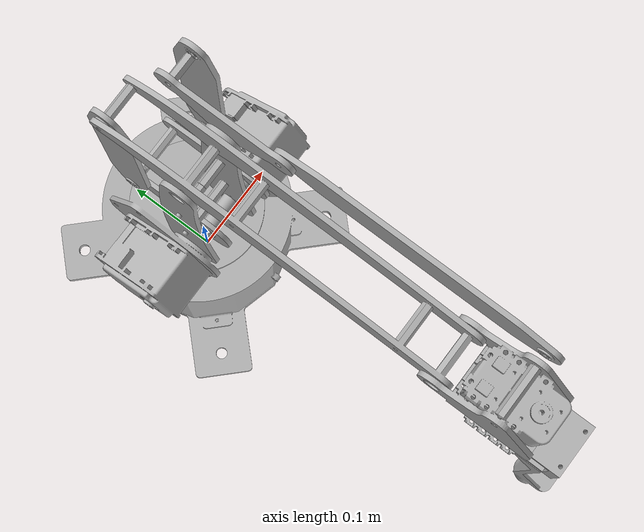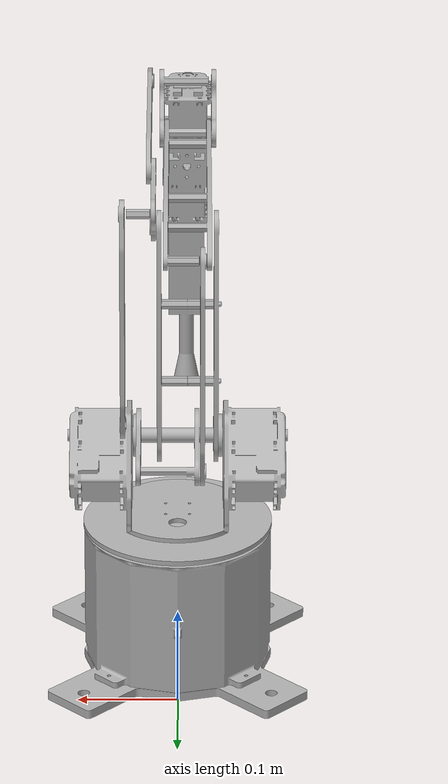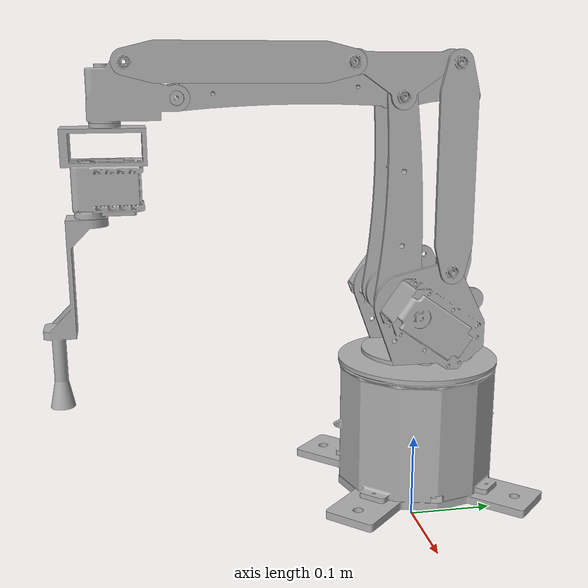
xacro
<?xml version="1.0" ?>
<robot name="palletizer_model" xmlns:xacro="http://www.ros.org/wiki/xacro">

	<xacro:include filename="$(find palletizer_model_pkg)/urdf/config.xacro" />

	<link name ="world"/>
	<joint name="pal_base" type="fixed">
		<parent link="world"/>
		<child link="pal_link0"/>
		<origin xyz = "0 0 0.05" rpy="0 0 -1.57" />
		<axis xyz="0 1 0" />
	</joint>

	<link name="pal_link0">
		<collision>
			<origin xyz = "0 0 0" rpy="0 0 0" />
			<geometry>
				<mesh filename="package://palletizer_model_pkg/meshes/link0.stl" scale="${scale_param*0.001} ${scale_param*0.001} ${scale_param*0.001}"/>
			</geometry>
		</collision>
		<visual>
			<geometry>
				<mesh filename="package://palletizer_model_pkg/meshes/link0.stl" scale="${scale_param*0.001} ${scale_param*0.001} ${scale_param*0.001}"/>
			</geometry>
			<material name="grey">
    				<color rgba="0.7 0.7 0.7 1.0"/>
  			</material>
		</visual>
	</link>
	<joint name="pal_joint0" type="continuous">
		<parent link="pal_link0"/>
		<child link="pal_link1"/>
		<origin xyz = "0 0 ${scale_param*0.107}" rpy="0 0 1.57" />
		<axis xyz="0 0 1" />
	</joint>
	<link name="pal_link1">
		<collision>
			<origin xyz = "0 0 0" rpy="0 0 0" />
			<geometry>
				<mesh filename="package://palletizer_model_pkg/meshes/link1.stl" scale="${scale_param*0.001} ${scale_param*0.001} ${scale_param*0.001}"/>
			</geometry>
		</collision>
		<visual>
			<geometry>
				<mesh filename="package://palletizer_model_pkg/meshes/link1.stl" scale="${scale_param*0.001} ${scale_param*0.001} ${scale_param*0.001}"/>
			</geometry>
			<material name="grey">
    				<color rgba="0.7 0.7 0.7 1.0"/>
  			</material>
		</visual>
	</link>
	<joint name="pal_joint1" type="revolute">
		<parent link="pal_link1"/>
		<child link="pal_link2"/>
		<origin xyz = "${-0.0065*scale_param} ${-0.021131*scale_param} ${0.04662*scale_param}" rpy="0 -1.57 0" />
		<axis xyz="0 0 -1" />
		<limit effort="1.0" lower="-1.57" upper="1.57" velocity="5.0"/>
	</joint>
	<link name="pal_link2">
		<collision>
			<origin xyz = "0 0 0" rpy="0 0 0" />
			<geometry>
				<mesh filename="package://palletizer_model_pkg/meshes/link2.stl" scale="${scale_param*0.001} ${scale_param*0.001} ${scale_param*0.001}"/>
			</geometry>
		</collision>
		<visual>
			<geometry>
				<mesh filename="package://palletizer_model_pkg/meshes/link2.stl" scale="${scale_param*0.001} ${scale_param*0.001} ${scale_param*0.001}"/>
			</geometry>
			<material name="grey">
    				<color rgba="0.7 0.7 0.7 1.0"/>
  			</material>
		</visual>
	</link>
	<joint name="pal_joint2" type="revolute">
		<parent link="pal_link1"/>
		<child link="pal_link8"/>
		<origin xyz = "${0.0065*scale_param} ${-0.02113*scale_param} ${0.04636*scale_param}" rpy="0 0 0" />
		<axis xyz="-1 0 0" />
		<limit effort="1.0" lower="-1.57" upper="1.57" velocity="5.0"/>
	</joint>
	<link name="pal_link3">
		<collision>
			<origin xyz = "0 0 0" rpy="0 0 0" />
			<geometry>
				<mesh filename="package://palletizer_model_pkg/meshes/link3.stl" scale="${scale_param*0.001} ${scale_param*0.001} ${scale_param*0.001}"/>
			</geometry>
		</collision>
		<visual>
			<geometry>
				<mesh filename="package://palletizer_model_pkg/meshes/link3.stl" scale="${scale_param*0.001} ${scale_param*0.001} ${scale_param*0.001}"/>
			</geometry>
			<material name="grey">
    				<color rgba="0.7 0.7 0.7 1.0"/>
  			</material>
		</visual>
	</link>
	<link name="pal_link4">
		<collision>
			<origin xyz = "0 0 0" rpy="0 0 0" />
			<geometry>
				<mesh filename="package://palletizer_model_pkg/meshes/link4.stl" scale="${scale_param*0.001} ${scale_param*0.001} ${scale_param*0.001}"/>
			</geometry>
		</collision>
		<visual>
			<geometry>
				<mesh filename="package://palletizer_model_pkg/meshes/link4.stl" scale="${scale_param*0.001} ${scale_param*0.001} ${scale_param*0.001}"/>
			</geometry>
			<material name="grey">
    				<color rgba="0.7 0.7 0.7 1.0"/>
  			</material>
		</visual>
	</link>
	<joint name="pal_joint3" type="revolute">
		<parent link="pal_link4"/>
		<child link="pal_link4_1"/>
		<origin xyz = "0 ${-0.0495*scale_param} ${-0.017*scale_param}" rpy="0 0 0" />
		<axis xyz="0 0 -1" />
		<limit effort="1.0" lower="-3.14" upper="3.14" velocity="5.0"/>
	</joint>
	<link name="pal_link4_1">
		<collision>
			<origin xyz = "0 0 0" rpy="0 0 0" />
			<geometry>
				<mesh filename="package://palletizer_model_pkg/meshes/link4_1.stl" scale="${scale_param*0.001} ${scale_param*0.001} ${scale_param*0.001}"/>
			</geometry>
		</collision>
		<visual>
			<geometry>
				<mesh filename="package://palletizer_model_pkg/meshes/link4_1.stl" scale="${scale_param*0.001} ${scale_param*0.001} ${scale_param*0.001}"/>
			</geometry>
			<material name="grey">
    				<color rgba="0.7 0.7 0.7 1.0"/>
  			</material>
		</visual>
	</link>
	<joint name="prisos_joint" type="fixed">
		<parent link="pal_link4_1"/>
		<child link="prisos"/>
		<origin xyz = "${0.001*scale_param} ${-0.041*scale_param} ${-0.066*scale_param}" rpy="0 0 -1.57" />
	</joint>
	<link name="prisos">
		<collision>
			<origin xyz = "0 0 0" rpy="0 0 0" />
			<geometry>
				<mesh filename="package://palletizer_model_pkg/meshes/prisos.stl" scale="${scale_param*0.001} ${scale_param*0.001} ${scale_param*0.001}"/>
			</geometry>
		</collision>
		<visual>
			<geometry>
				<mesh filename="package://palletizer_model_pkg/meshes/prisos.stl" scale="${scale_param*0.001} ${scale_param*0.001} ${scale_param*0.001}"/>
			</geometry>
			<material name="grey">
    				<color rgba="0.7 0.7 0.7 1.0"/>
  			</material>
		</visual>
	</link>
	<joint name="pal_joint4" type="continuous">
		<parent link="pal_link3"/>
		<child link="pal_link4"/>
		<origin xyz = "${-0.160*scale_param} 0 0" rpy="-1.57 -1.57 0" />
		<axis xyz="1 0 0" />
		<mimic joint="pal_joint1" multiplier="-1" offset="0"/>
	</joint>
	<joint name="pal_joint10" type="continuous">
		<parent link="pal_link1"/>
		<child link="pal_link5"/>
		<origin xyz = "${0.0339*scale_param} ${0.01328*scale_param} ${0.070418*scale_param}" rpy="1.57 0 3.14" />
		<axis xyz="1 0 0" />
		<mimic joint="pal_joint1" multiplier="1" offset="0"/>
	</joint>
	<link name="pal_link5">
		<collision>
			<origin xyz = "0 0 0" rpy="0 0 0" />
			<geometry>
				<mesh filename="package://palletizer_model_pkg/meshes/link5.stl" scale="${scale_param*0.001} ${scale_param*0.001} ${scale_param*0.001}"/>
			</geometry>
		</collision>
		<visual>
			<geometry>
				<mesh filename="package://palletizer_model_pkg/meshes/link5.stl" scale="${scale_param*0.001} ${scale_param*0.001} ${scale_param*0.001}"/>
			</geometry>
			<material name="grey">
    				<color rgba="0.7 0.7 0.7 1.0"/>
  			</material>
		</visual>
	</link>
	<joint name="pal_joint5" type="continuous">
		<parent link="pal_link2"/>
		<child link="pal_link6"/>
		<origin xyz = "${0.148*scale_param} 0 ${-0.0205*scale_param}" rpy="0 0 0" />
		<axis xyz="0 0 1" />
		<mimic joint="pal_joint3" multiplier="-1" offset="0"/>
	</joint>
	<link name="pal_link6">
		<collision>
			<origin xyz = "0 0 0" rpy="0 0 0" />
			<geometry>
				<mesh filename="package://palletizer_model_pkg/meshes/link6.stl" scale="${scale_param*0.001} ${scale_param*0.001} ${scale_param*0.001}"/>
			</geometry>
		</collision>
		<visual>
			<geometry>
				<mesh filename="package://palletizer_model_pkg/meshes/link6.stl" scale="${scale_param*0.001} ${scale_param*0.001} ${scale_param*0.001}"/>
			</geometry>
			<material name="grey">
    				<color rgba="0.7 0.7 0.7 1.0"/>
  			</material>
		</visual>
	</link>
	<joint name="pal_joint6" type="continuous">
		<parent link="pal_link4"/>
		<child link="pal_link7"/>
		<origin xyz = "${0.024*scale_param} ${-0.034404*scale_param} ${0.02409*scale_param}" rpy="3.14 0 0" />
		<axis xyz="1 0 0" />
		<mimic joint="pal_joint3" multiplier="-1" offset="0"/>
	</joint>
	<link name="pal_link7">
		<collision>
			<origin xyz = "0 0 0" rpy="0 0 0" />
			<geometry>
				<mesh filename="package://palletizer_model_pkg/meshes/link7.stl" scale="${scale_param*0.001} ${scale_param*0.001} ${scale_param*0.001}"/>
			</geometry>
		</collision>
		<visual>
			<geometry>
				<mesh filename="package://palletizer_model_pkg/meshes/link7.stl" scale="${scale_param*0.001} ${scale_param*0.001} ${scale_param*0.001}"/>
			</geometry>
			<material name="grey">
    				<color rgba="0.7 0.7 0.7 1.0"/>
  			</material>
		</visual>
	</link>
	<joint name="pal_joint7" type="continuous">
		<parent link="pal_link2"/>
		<child link="pal_link3"/>
		<origin xyz = "${0.148*scale_param} 0 0" rpy="0 3.14 -1.57" />
		<axis xyz="0 0 1" />
		<mimic joint="pal_joint2" multiplier="1" offset="0"/>
	</joint>

	<link name="pal_link8">
		<collision>
			<origin xyz = "0 0 0" rpy="0 0 0" />
			<geometry>
				<mesh filename="package://palletizer_model_pkg/meshes/link8.stl" scale="${scale_param*0.001} ${scale_param*0.001} ${scale_param*0.001}"/>
			</geometry>
		</collision>
		<visual>
			<geometry>
				<mesh filename="package://palletizer_model_pkg/meshes/link8.stl" scale="${scale_param*0.001} ${scale_param*0.001} ${scale_param*0.001}"/>
			</geometry>
			<material name="grey">
    				<color rgba="0.7 0.7 0.7 1.0"/>
  			</material>
		</visual>
	</link>
	<joint name="pal_joint8" type="continuous">
		<parent link="pal_link8"/>
		<child link="pal_link9"/>
		<origin xyz = "${-0.021*scale_param} ${0.054*scale_param} 0" rpy="1.57 0 0" />
		<axis xyz="1 0 0" />
		<mimic joint="pal_joint1" multiplier="-1" offset="0"/>
	</joint>
	<link name="pal_link9">
		<collision>
			<origin xyz = "0 0 0" rpy="0 0 0" />
			<geometry>
				<mesh filename="package://palletizer_model_pkg/meshes/link9.stl" scale="${scale_param*0.001} ${scale_param*0.001} ${scale_param*0.001}"/>
			</geometry>
		</collision>
		<visual>
			<geometry>
				<mesh filename="package://palletizer_model_pkg/meshes/link9.stl" scale="${scale_param*0.001} ${scale_param*0.001} ${scale_param*0.001}"/>
			</geometry>
			<material name="grey">
    				<color rgba="0.7 0.7 0.7 1.0"/>
  			</material>
		</visual>
	</link>

</robot>

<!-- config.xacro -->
<robot xmlns:xacro="http://www.ros.org/wiki/xacro">
  <xacro:property name="scale_param" value="1.5" />
</robot>
